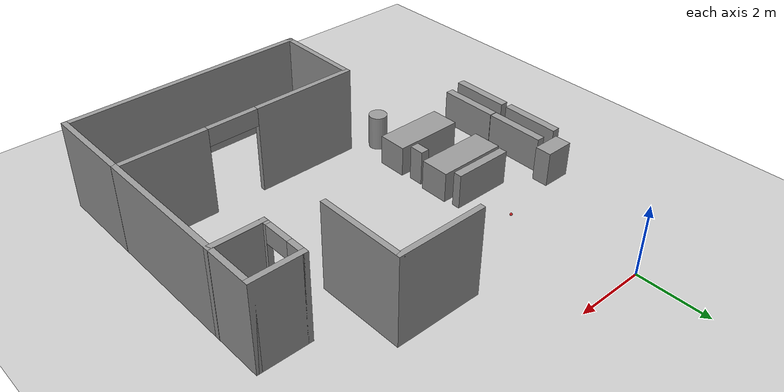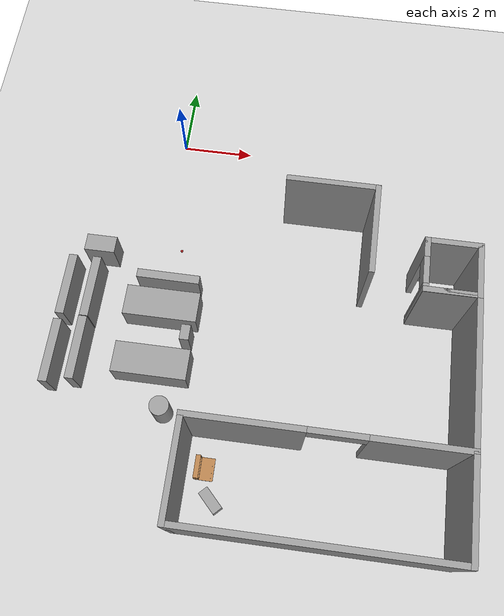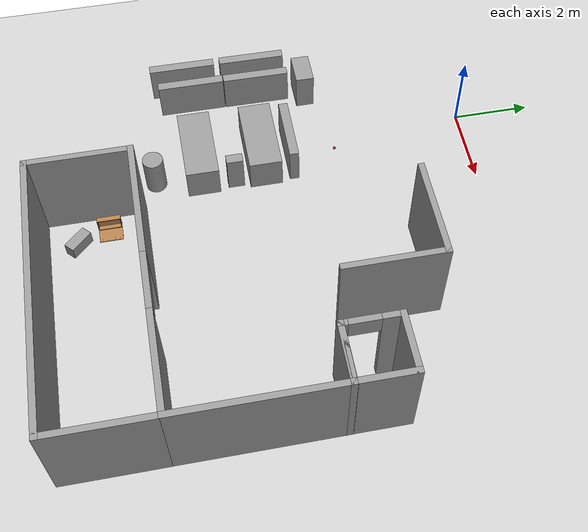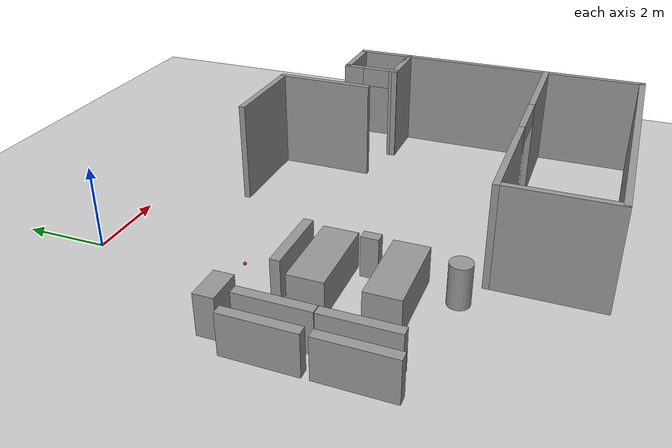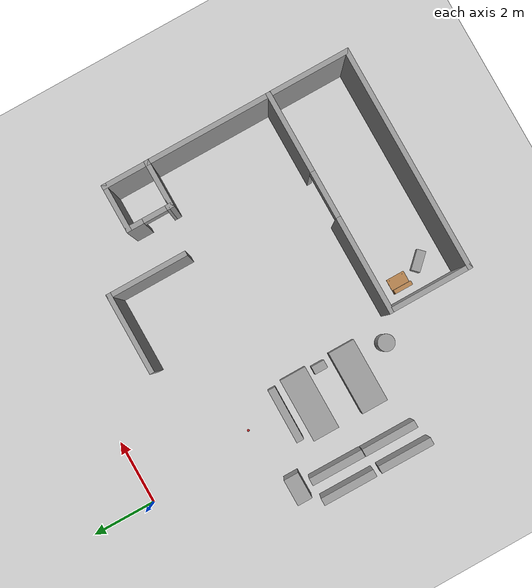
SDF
<sdf version="1.6">
 <world name="default">
  <model name="ground_plane">
   <static>1</static>
   <link name="link">
    <collision name="collision">
     <geometry><plane><normal>0 0 1</normal><size>100 100</size></plane></geometry>
     <surface><friction><ode><mu>100</mu><mu2>50</mu2></ode></friction></surface>
    </collision>
    <visual name="visual">
     <cast_shadows>0</cast_shadows>
     <geometry><plane><normal>0 0 1</normal><size>100 100</size></plane></geometry>
     <material>
      <script><uri>file://media/materials/scripts/gazebo.material</uri><name>Gazebo/Grey</name></script>
     </material>
    </visual>
   </link>
  </model>
  <model name="cma_parede_L">
   <pose>4.97628 -6.69992 0 0 -0 0</pose>
   <link name="Wall_0">
    <pose>0 -1.925 0 0 -0 0</pose>
    <visual name="Wall_0_Visual_0">
     <pose>-1.985 0 1.25 0 -0 0</pose>
     <geometry><box><size>3.03 0.15 2.5</size></box></geometry>
     <material>
      <script><uri>file://media/materials/scripts/gazebo.material</uri><name>Gazebo/Grey</name></script>
      <ambient>1 1 1 1</ambient>
     </material>
    </visual>
    <collision name="Wall_0_Collision_0">
     <geometry><box><size>3.03 0.15 2.5</size></box></geometry>
     <pose>-1.985 0 1.25 0 -0 0</pose>
    </collision>
    <visual name="Wall_0_Visual_1">
     <pose>2.24 0 1.25 0 -0 0</pose>
     <geometry><box><size>2.52 0.15 2.5</size></box></geometry>
     <material>
      <script><uri>file://media/materials/scripts/gazebo.material</uri><name>Gazebo/Grey</name></script>
      <ambient>1 1 1 1</ambient>
     </material>
    </visual>
    <collision name="Wall_0_Collision_1">
     <geometry><box><size>2.52 0.15 2.5</size></box></geometry>
     <pose>2.24 0 1.25 0 -0 0</pose>
    </collision>
    <visual name="Wall_0_Visual_2">
     <pose>0.255 0 2.25 0 -0 0</pose>
     <geometry><box><size>1.45 0.15 0.5</size></box></geometry>
     <material>
      <script><uri>file://media/materials/scripts/gazebo.material</uri><name>Gazebo/Grey</name></script>
      <ambient>1 1 1 1</ambient>
     </material>
    </visual>
    <collision name="Wall_0_Collision_2">
     <geometry><box><size>1.45 0.15 0.5</size></box></geometry>
     <pose>0.255 0 2.25 0 -0 0</pose>
    </collision>
   </link>
   <link name="Wall_1">
    <collision name="Wall_1_Collision">
     <geometry><box><size>4 0.15 2.5</size></box></geometry>
     <pose>0 0 1.25 0 -0 0</pose>
    </collision>
    <visual name="Wall_1_Visual">
     <pose>0 0 1.25 0 -0 0</pose>
     <geometry><box><size>4 0.15 2.5</size></box></geometry>
     <material>
      <script><uri>file://media/materials/scripts/gazebo.material</uri><name>Gazebo/Grey</name></script>
      <ambient>1 1 1 1</ambient>
     </material>
    </visual>
    <pose>3.425 0 0 0 -0 1.5708</pose>
   </link>
   <link name="Wall_2">
    <collision name="Wall_2_Collision">
     <geometry><box><size>1.5 0.15 2.5</size></box></geometry>
     <pose>0 0 1.25 0 -0 0</pose>
    </collision>
    <visual name="Wall_2_Visual">
     <pose>0 0 1.25 0 -0 0</pose>
     <geometry><box><size>1.5 0.15 2.5</size></box></geometry>
     <material>
      <script><uri>file://media/materials/scripts/gazebo.material</uri><name>Gazebo/Grey</name></script>
      <ambient>1 1 1 1</ambient>
     </material>
    </visual>
    <pose>2.75 1.925 0 0 -0 3.14159</pose>
   </link>
   <static>1</static>
  </model>
  <model name="cma_lavabo">
   <pose>7.72297 -4.09302 0 0 -0 0</pose>
   <link name="Wall_4">
    <pose>-0.675 0 0 0 -0 1.5708</pose>
    <visual name="Wall_4_Visual_0">
     <pose>-0.635 0 1.25 0 -0 0</pose>
     <geometry><box><size>0.23 0.15 2.5</size></box></geometry>
     <material>
      <script><uri>file://media/materials/scripts/gazebo.material</uri><name>Gazebo/Grey</name></script>
      <ambient>1 1 1 1</ambient>
     </material>
    </visual>
    <collision name="Wall_4_Collision_0">
     <geometry><box><size>0.23 0.15 2.5</size></box></geometry>
     <pose>-0.635 0 1.25 0 -0 0</pose>
    </collision>
    <visual name="Wall_4_Visual_1">
     <pose>0.48 0 1.25 0 -0 0</pose>
     <geometry><box><size>0.54 0.15 2.5</size></box></geometry>
     <material>
      <script><uri>file://media/materials/scripts/gazebo.material</uri><name>Gazebo/Grey</name></script>
      <ambient>1 1 1 1</ambient>
     </material>
    </visual>
    <collision name="Wall_4_Collision_1">
     <geometry><box><size>0.54 0.15 2.5</size></box></geometry>
     <pose>0.48 0 1.25 0 -0 0</pose>
    </collision>
    <visual name="Wall_4_Visual_2">
     <pose>-0.155 0 2.25 0 -0 0</pose>
     <geometry><box><size>0.73 0.15 0.5</size></box></geometry>
     <material>
      <script><uri>file://media/materials/scripts/gazebo.material</uri><name>Gazebo/Grey</name></script>
      <ambient>1 1 1 1</ambient>
     </material>
    </visual>
    <collision name="Wall_4_Collision_2">
     <geometry><box><size>0.73 0.15 0.5</size></box></geometry>
     <pose>-0.155 0 2.25 0 -0 0</pose>
    </collision>
   </link>
   <link name="Wall_5">
    <collision name="Wall_5_Collision">
     <geometry><box><size>1.5 0.15 2.5</size></box></geometry>
     <pose>0 0 1.25 0 -0 0</pose>
    </collision>
    <visual name="Wall_5_Visual">
     <pose>0 0 1.25 0 -0 0</pose>
     <geometry><box><size>1.5 0.15 2.5</size></box></geometry>
     <material>
      <script><uri>file://media/materials/scripts/gazebo.material</uri><name>Gazebo/Grey</name></script>
      <ambient>1 1 1 1</ambient>
     </material>
    </visual>
    <pose>0 0.675 0 0 -0 0</pose>
   </link>
   <link name="Wall_6">
    <collision name="Wall_6_Collision">
     <geometry><box><size>1.5 0.15 2.5</size></box></geometry>
     <pose>0 0 1.25 0 -0 0</pose>
    </collision>
    <visual name="Wall_6_Visual">
     <pose>0 0 1.25 0 -0 0</pose>
     <geometry><box><size>1.5 0.15 2.5</size></box></geometry>
     <material>
      <script><uri>file://media/materials/scripts/gazebo.material</uri><name>Gazebo/Grey</name></script>
      <ambient>1 1 1 1</ambient>
     </material>
    </visual>
    <pose>0.675 0 0 0 0 -1.5708</pose>
   </link>
   <link name="Wall_7">
    <collision name="Wall_7_Collision">
     <geometry><box><size>1.5 0.15 2.5</size></box></geometry>
     <pose>0 0 1.25 0 -0 0</pose>
    </collision>
    <visual name="Wall_7_Visual">
     <pose>0 0 1.25 0 -0 0</pose>
     <geometry><box><size>1.5 0.15 2.5</size></box></geometry>
     <material>
      <script><uri>file://media/materials/scripts/gazebo.material</uri><name>Gazebo/Grey</name></script>
      <ambient>1 1 1 1</ambient>
     </material>
    </visual>
    <pose>0 -0.675 0 0 -0 3.14159</pose>
   </link>
   <static>1</static>
  </model>
  <model name="cma_L2">
   <pose>4.51683 -3.24587 0 0 -0 0</pose>
   <link name="Wall_10">
    <collision name="Wall_10_Collision">
     <geometry><box><size>2.5 0.15 2.5</size></box></geometry>
     <pose>0 0 1.25 0 -0 0</pose>
    </collision>
    <visual name="Wall_10_Visual">
     <pose>0 0 1.25 0 -0 0</pose>
     <geometry><box><size>2.5 0.15 2.5</size></box></geometry>
     <material>
      <script><uri>file://media/materials/scripts/gazebo.material</uri><name>Gazebo/Grey</name></script>
      <ambient>1 1 1 1</ambient>
     </material>
    </visual>
    <pose>1.175 0 0 0 0 -1.5708</pose>
   </link>
   <link name="Wall_9">
    <collision name="Wall_9_Collision">
     <geometry><box><size>2.5 0.15 2.5</size></box></geometry>
     <pose>0 0 1.25 0 -0 0</pose>
    </collision>
    <visual name="Wall_9_Visual">
     <pose>0 0 1.25 0 -0 0</pose>
     <geometry><box><size>2.5 0.15 2.5</size></box></geometry>
     <material>
      <script><uri>file://media/materials/scripts/gazebo.material</uri><name>Gazebo/Grey</name></script>
      <ambient>1 1 1 1</ambient>
     </material>
    </visual>
    <pose>0 1.175 0 0 -0 0</pose>
   </link>
   <static>1</static>
  </model>
  <model name="cma_U">
   <pose>4.97895 -9.92408 0 0 -0 0</pose>
   <link name="Wall_16">
    <collision name="Wall_16_Collision">
     <geometry><box><size>2.5 0.15 2.5</size></box></geometry>
     <pose>0 0 1.25 0 -0 0</pose>
    </collision>
    <visual name="Wall_16_Visual">
     <pose>0 0 1.25 0 -0 0</pose>
     <geometry><box><size>2.5 0.15 2.5</size></box></geometry>
     <material>
      <script><uri>file://media/materials/scripts/gazebo.material</uri><name>Gazebo/Grey</name></script>
      <ambient>1 1 1 1</ambient>
     </material>
    </visual>
    <pose>-3.425 0 0 0 0 -1.5708</pose>
   </link>
   <link name="Wall_17">
    <collision name="Wall_17_Collision">
     <geometry><box><size>7 0.15 2.5</size></box></geometry>
     <pose>0 0 1.25 0 -0 0</pose>
    </collision>
    <visual name="Wall_17_Visual">
     <pose>0 0 1.25 0 -0 0</pose>
     <geometry><box><size>7 0.15 2.5</size></box></geometry>
     <material>
      <script><uri>file://media/materials/scripts/gazebo.material</uri><name>Gazebo/Grey</name></script>
      <ambient>1 1 1 1</ambient>
     </material>
    </visual>
    <pose>0 -1.175 0 0 -0 0</pose>
   </link>
   <link name="Wall_18">
    <collision name="Wall_18_Collision">
     <geometry><box><size>2.5 0.15 2.5</size></box></geometry>
     <pose>0 0 1.25 0 -0 0</pose>
    </collision>
    <visual name="Wall_18_Visual">
     <pose>0 0 1.25 0 -0 0</pose>
     <geometry><box><size>2.5 0.15 2.5</size></box></geometry>
     <material>
      <script><uri>file://media/materials/scripts/gazebo.material</uri><name>Gazebo/Grey</name></script>
      <ambient>1 1 1 1</ambient>
     </material>
    </visual>
    <pose>3.425 0 0 0 -0 1.5708</pose>
   </link>
   <static>1</static>
  </model>
  <model name="cma_armario_s">
   <link name="link_1">
    <pose>-2e-06 -3e-06 0 0 -0 0</pose>
    <inertial>
     <mass>0.390159</mass>
     <inertia>
      <ixx>0.039647</ixx>
      <ixy>0</ixy>
      <ixz>0</ixz>
      <iyy>0.0550708</iyy>
      <iyz>0</iyz>
      <izz>0.0296912</izz>
     </inertia>
    </inertial>
    <visual name="visual">
     <geometry><box><size>0.832942 0.468397 1</size></box></geometry>
     <material>
      <lighting>1</lighting>
      <script><uri>file://media/materials/scripts/gazebo.material</uri><name>Gazebo/Grey</name></script>
      <ambient>0.3 0.3 0.3 1</ambient>
      <diffuse>0.7 0.7 0.7 1</diffuse>
      <specular>0.01 0.01 0.01 1</specular>
      <emissive>0 0 0 1</emissive>
     </material>
    </visual>
    <collision name="collision">
     <geometry><box><size>0.832942 0.468397 1</size></box></geometry>
     <surface>
      <friction>
       <ode><mu>1</mu><mu2>1</mu2><fdir1>0 0 0</fdir1><slip1>0</slip1><slip2>0</slip2></ode>
       <torsional>
        <coefficient>1</coefficient>
        <patch_radius>0</patch_radius>
        <surface_radius>0</surface_radius>
        <use_patch_radius>1</use_patch_radius>
        <ode><slip>0</slip></ode>
       </torsional>
      </friction>
      <bounce><restitution_coefficient>0</restitution_coefficient><threshold>1e+06</threshold></bounce>
      <contact>
       <collide_without_contact>0</collide_without_contact>
       <collide_without_contact_bitmask>1</collide_without_contact_bitmask>
       <collide_bitmask>1</collide_bitmask>
       <ode>
        <soft_cfm>0</soft_cfm>
        <soft_erp>0.2</soft_erp>
        <kp>1e+13</kp>
        <kd>1</kd>
        <max_vel>0.01</max_vel>
        <min_depth>0</min_depth>
       </ode>
       <bullet>
        <split_impulse>1</split_impulse>
        <split_impulse_penetration_threshold>-0.01</split_impulse_penetration_threshold>
        <soft_cfm>0</soft_cfm>
        <soft_erp>0.2</soft_erp>
        <kp>1e+13</kp>
        <kd>1</kd>
       </bullet>
      </contact>
     </surface>
    </collision>
   </link>
   <static>0</static>
   <pose>-1.63844 -3.93796 0.500001 6e-06 -0 0.001709</pose>
  </model>
  <model name="cma_armario_2">
   <link name="link_0">
    <pose>1.32157 0.885178 0.5 0 -0 0</pose>
    <inertial>
     <mass>0.402376</mass>
     <inertia>
      <ixx>0.0353686</ixx>
      <ixy>0</ixy>
      <ixz>0</ixz>
      <iyy>0.132616</iyy>
      <iyz>0</iyz>
      <izz>0.100922</izz>
     </inertia>
    </inertial>
    <visual name="visual">
     <geometry><box><size>1.71877 0.234069 1</size></box></geometry>
     <material>
      <lighting>1</lighting>
      <script><uri>file://media/materials/scripts/gazebo.material</uri><name>Gazebo/Grey</name></script>
      <ambient>0.3 0.3 0.3 1</ambient>
      <diffuse>0.7 0.7 0.7 1</diffuse>
      <specular>0.01 0.01 0.01 1</specular>
      <emissive>0 0 0 1</emissive>
     </material>
    </visual>
    <collision name="collision">
     <geometry><box><size>1.71877 0.234069 1</size></box></geometry>
     <surface>
      <friction>
       <ode><mu>1</mu><mu2>1</mu2><fdir1>0 0 0</fdir1><slip1>0</slip1><slip2>0</slip2></ode>
       <torsional>
        <coefficient>1</coefficient>
        <patch_radius>0</patch_radius>
        <surface_radius>0</surface_radius>
        <use_patch_radius>1</use_patch_radius>
        <ode><slip>0</slip></ode>
       </torsional>
      </friction>
      <bounce><restitution_coefficient>0</restitution_coefficient><threshold>1e+06</threshold></bounce>
      <contact>
       <collide_without_contact>0</collide_without_contact>
       <collide_without_contact_bitmask>1</collide_without_contact_bitmask>
       <collide_bitmask>1</collide_bitmask>
       <ode>
        <soft_cfm>0</soft_cfm>
        <soft_erp>0.2</soft_erp>
        <kp>1e+13</kp>
        <kd>1</kd>
        <max_vel>0.01</max_vel>
        <min_depth>0</min_depth>
       </ode>
       <bullet>
        <split_impulse>1</split_impulse>
        <split_impulse_penetration_threshold>-0.01</split_impulse_penetration_threshold>
        <soft_cfm>0</soft_cfm>
        <soft_erp>0.2</soft_erp>
        <kp>1e+13</kp>
        <kd>1</kd>
       </bullet>
      </contact>
     </surface>
    </collision>
   </link>
   <static>0</static>
   <pose>-1.43697 -6.56213 1e-06 -2e-06 -0 1.56474</pose>
  </model>
  <model name="cma_armario_2_clone">
   <link name="link_0">
    <pose>1.32157 0.885178 0.5 0 -0 0</pose>
    <inertial>
     <mass>0.402376</mass>
     <inertia>
      <ixx>0.0353686</ixx>
      <ixy>0</ixy>
      <ixz>0</ixz>
      <iyy>0.132616</iyy>
      <iyz>0</iyz>
      <izz>0.100922</izz>
     </inertia>
    </inertial>
    <visual name="visual">
     <geometry><box><size>1.71877 0.234069 1</size></box></geometry>
     <material>
      <lighting>1</lighting>
      <script><uri>file://media/materials/scripts/gazebo.material</uri><name>Gazebo/Grey</name></script>
      <ambient>0.3 0.3 0.3 1</ambient>
      <diffuse>0.7 0.7 0.7 1</diffuse>
      <specular>0.01 0.01 0.01 1</specular>
      <emissive>0 0 0 1</emissive>
     </material>
    </visual>
    <collision name="collision">
     <geometry><box><size>1.71877 0.234069 1</size></box></geometry>
     <surface>
      <friction>
       <ode><mu>1</mu><mu2>1</mu2><fdir1>0 0 0</fdir1><slip1>0</slip1><slip2>0</slip2></ode>
       <torsional>
        <coefficient>1</coefficient>
        <patch_radius>0</patch_radius>
        <surface_radius>0</surface_radius>
        <use_patch_radius>1</use_patch_radius>
        <ode><slip>0</slip></ode>
       </torsional>
      </friction>
      <bounce><restitution_coefficient>0</restitution_coefficient><threshold>1e+06</threshold></bounce>
      <contact>
       <collide_without_contact>0</collide_without_contact>
       <collide_without_contact_bitmask>1</collide_without_contact_bitmask>
       <collide_bitmask>1</collide_bitmask>
       <ode>
        <soft_cfm>0</soft_cfm>
        <soft_erp>0.2</soft_erp>
        <kp>1e+13</kp>
        <kd>1</kd>
        <max_vel>0.01</max_vel>
        <min_depth>0</min_depth>
       </ode>
       <bullet>
        <split_impulse>1</split_impulse>
        <split_impulse_penetration_threshold>-0.01</split_impulse_penetration_threshold>
        <soft_cfm>0</soft_cfm>
        <soft_erp>0.2</soft_erp>
        <kp>1e+13</kp>
        <kd>1</kd>
       </bullet>
      </contact>
     </surface>
    </collision>
   </link>
   <static>0</static>
   <pose>-1.44352 -8.44504 1e-06 -2e-06 -0 1.56474</pose>
  </model>
  <model name="cma_cama_s">
   <link name="link_0">
    <pose>-0 2e-06 0 0 -0 0</pose>
    <inertial>
     <mass>1.44546</mass>
     <inertia>
      <ixx>0.173816</ixx>
      <ixy>0</ixy>
      <ixz>0</ixz>
      <iyy>0.575223</iyy>
      <iyz>0</iyz>
      <izz>0.56746</izz>
     </inertia>
    </inertial>
    <visual name="visual">
     <geometry><box><size>2.0054 0.830227 0.868163</size></box></geometry>
     <material>
      <lighting>1</lighting>
      <script><uri>file://media/materials/scripts/gazebo.material</uri><name>Gazebo/Grey</name></script>
      <ambient>0.3 0.3 0.3 1</ambient>
      <diffuse>0.7 0.7 0.7 1</diffuse>
      <specular>0.01 0.01 0.01 1</specular>
      <emissive>0 0 0 1</emissive>
     </material>
    </visual>
    <collision name="collision">
     <geometry><box><size>2.0054 0.830227 0.868163</size></box></geometry>
     <surface>
      <friction>
       <ode><mu>1</mu><mu2>1</mu2><fdir1>0 0 0</fdir1><slip1>0</slip1><slip2>0</slip2></ode>
       <torsional>
        <coefficient>1</coefficient>
        <patch_radius>0</patch_radius>
        <surface_radius>0</surface_radius>
        <use_patch_radius>1</use_patch_radius>
        <ode><slip>0</slip></ode>
       </torsional>
      </friction>
      <bounce><restitution_coefficient>0</restitution_coefficient><threshold>1e+06</threshold></bounce>
      <contact>
       <collide_without_contact>0</collide_without_contact>
       <collide_without_contact_bitmask>1</collide_without_contact_bitmask>
       <collide_bitmask>1</collide_bitmask>
       <ode>
        <soft_cfm>0</soft_cfm>
        <soft_erp>0.2</soft_erp>
        <kp>1e+13</kp>
        <kd>1</kd>
        <max_vel>0.01</max_vel>
        <min_depth>0</min_depth>
       </ode>
       <bullet>
        <split_impulse>1</split_impulse>
        <split_impulse_penetration_threshold>-0.01</split_impulse_penetration_threshold>
        <soft_cfm>0</soft_cfm>
        <soft_erp>0.2</soft_erp>
        <kp>1e+13</kp>
        <kd>1</kd>
       </bullet>
      </contact>
     </surface>
    </collision>
   </link>
   <static>0</static>
   <pose>0.315394 -5.42014 0.43408 5e-06 -0 -4e-06</pose>
  </model>
  <model name="cma_cama_s_0">
   <link name="link_0">
    <pose>-0 2e-06 0 0 -0 0</pose>
    <inertial>
     <mass>1.44546</mass>
     <inertia>
      <ixx>0.173816</ixx>
      <ixy>0</ixy>
      <ixz>0</ixz>
      <iyy>0.575223</iyy>
      <iyz>0</iyz>
      <izz>0.56746</izz>
     </inertia>
    </inertial>
    <visual name="visual">
     <geometry><box><size>2.0054 0.830227 0.868163</size></box></geometry>
     <material>
      <lighting>1</lighting>
      <script><uri>file://media/materials/scripts/gazebo.material</uri><name>Gazebo/Grey</name></script>
      <ambient>0.3 0.3 0.3 1</ambient>
      <diffuse>0.7 0.7 0.7 1</diffuse>
      <specular>0.01 0.01 0.01 1</specular>
      <emissive>0 0 0 1</emissive>
     </material>
    </visual>
    <collision name="collision">
     <geometry><box><size>2.0054 0.830227 0.868163</size></box></geometry>
     <surface>
      <friction>
       <ode><mu>1</mu><mu2>1</mu2><fdir1>0 0 0</fdir1><slip1>0</slip1><slip2>0</slip2></ode>
       <torsional>
        <coefficient>1</coefficient>
        <patch_radius>0</patch_radius>
        <surface_radius>0</surface_radius>
        <use_patch_radius>1</use_patch_radius>
        <ode><slip>0</slip></ode>
       </torsional>
      </friction>
      <bounce><restitution_coefficient>0</restitution_coefficient><threshold>1e+06</threshold></bounce>
      <contact>
       <collide_without_contact>0</collide_without_contact>
       <collide_without_contact_bitmask>1</collide_without_contact_bitmask>
       <collide_bitmask>1</collide_bitmask>
       <ode>
        <soft_cfm>0</soft_cfm>
        <soft_erp>0.2</soft_erp>
        <kp>1e+13</kp>
        <kd>1</kd>
        <max_vel>0.01</max_vel>
        <min_depth>0</min_depth>
       </ode>
       <bullet>
        <split_impulse>1</split_impulse>
        <split_impulse_penetration_threshold>-0.01</split_impulse_penetration_threshold>
        <soft_cfm>0</soft_cfm>
        <soft_erp>0.2</soft_erp>
        <kp>1e+13</kp>
        <kd>1</kd>
       </bullet>
      </contact>
     </surface>
    </collision>
   </link>
   <static>0</static>
   <pose>0.314116 -7.03078 0.43408 -5e-06 -0 -2e-06</pose>
  </model>
  <model name="cma_picador">
   <link name="link_2">
    <pose>-0.7258 -1.69104 0 0 -0 0</pose>
    <inertial>
     <mass>0.104732</mass>
     <inertia>
      <ixx>0.00927906</ixx>
      <ixy>0</ixy>
      <ixz>0</ixz>
      <iyy>0.010243</iyy>
      <iyz>0</iyz>
      <izz>0.00206672</izz>
     </inertia>
    </inertial>
    <visual name="visual">
     <geometry><box><size>0.416688 0.25134 1</size></box></geometry>
     <material>
      <lighting>1</lighting>
      <script><uri>file://media/materials/scripts/gazebo.material</uri><name>Gazebo/Grey</name></script>
      <ambient>0.3 0.3 0.3 1</ambient>
      <diffuse>0.7 0.7 0.7 1</diffuse>
      <specular>0.01 0.01 0.01 1</specular>
      <emissive>0 0 0 1</emissive>
     </material>
    </visual>
    <collision name="collision">
     <geometry><box><size>0.416688 0.25134 1</size></box></geometry>
     <surface>
      <friction>
       <ode><mu>1</mu><mu2>1</mu2><fdir1>0 0 0</fdir1><slip1>0</slip1><slip2>0</slip2></ode>
       <torsional>
        <coefficient>1</coefficient>
        <patch_radius>0</patch_radius>
        <surface_radius>0</surface_radius>
        <use_patch_radius>1</use_patch_radius>
        <ode><slip>0</slip></ode>
       </torsional>
      </friction>
      <bounce><restitution_coefficient>0</restitution_coefficient><threshold>1e+06</threshold></bounce>
      <contact>
       <collide_without_contact>0</collide_without_contact>
       <collide_without_contact_bitmask>1</collide_without_contact_bitmask>
       <collide_bitmask>1</collide_bitmask>
       <ode>
        <soft_cfm>0</soft_cfm>
        <soft_erp>0.2</soft_erp>
        <kp>1e+13</kp>
        <kd>1</kd>
        <max_vel>0.01</max_vel>
        <min_depth>0</min_depth>
       </ode>
       <bullet>
        <split_impulse>1</split_impulse>
        <split_impulse_penetration_threshold>-0.01</split_impulse_penetration_threshold>
        <soft_cfm>0</soft_cfm>
        <soft_erp>0.2</soft_erp>
        <kp>1e+13</kp>
        <kd>1</kd>
       </bullet>
      </contact>
     </surface>
    </collision>
   </link>
   <static>0</static>
   <pose>-0.585834 -5.45588 0.499992 -3e-06 4e-06 1.56627</pose>
  </model>
  <model name="cma_armario_3">
   <link name="link_0">
    <pose>1.32157 0.885178 0.5 0 -0 0</pose>
    <inertial>
     <mass>0.402376</mass>
     <inertia>
      <ixx>0.0353686</ixx>
      <ixy>0</ixy>
      <ixz>0</ixz>
      <iyy>0.132616</iyy>
      <iyz>0</iyz>
      <izz>0.100922</izz>
     </inertia>
    </inertial>
    <visual name="visual">
     <geometry><box><size>1.71877 0.234069 1</size></box></geometry>
     <material>
      <lighting>1</lighting>
      <script><uri>file://media/materials/scripts/gazebo.material</uri><name>Gazebo/Grey</name></script>
      <ambient>0.3 0.3 0.3 1</ambient>
      <diffuse>0.7 0.7 0.7 1</diffuse>
      <specular>0.01 0.01 0.01 1</specular>
      <emissive>0 0 0 1</emissive>
     </material>
    </visual>
    <collision name="collision">
     <geometry><box><size>1.71877 0.234069 1</size></box></geometry>
     <surface>
      <friction>
       <ode><mu>1</mu><mu2>1</mu2><fdir1>0 0 0</fdir1><slip1>0</slip1><slip2>0</slip2></ode>
       <torsional>
        <coefficient>1</coefficient>
        <patch_radius>0</patch_radius>
        <surface_radius>0</surface_radius>
        <use_patch_radius>1</use_patch_radius>
        <ode><slip>0</slip></ode>
       </torsional>
      </friction>
      <bounce><restitution_coefficient>0</restitution_coefficient><threshold>1e+06</threshold></bounce>
      <contact>
       <collide_without_contact>0</collide_without_contact>
       <collide_without_contact_bitmask>1</collide_without_contact_bitmask>
       <collide_bitmask>1</collide_bitmask>
       <ode>
        <soft_cfm>0</soft_cfm>
        <soft_erp>0.2</soft_erp>
        <kp>1e+13</kp>
        <kd>1</kd>
        <max_vel>0.01</max_vel>
        <min_depth>0</min_depth>
       </ode>
       <bullet>
        <split_impulse>1</split_impulse>
        <split_impulse_penetration_threshold>-0.01</split_impulse_penetration_threshold>
        <soft_cfm>0</soft_cfm>
        <soft_erp>0.2</soft_erp>
        <kp>1e+13</kp>
        <kd>1</kd>
       </bullet>
      </contact>
     </surface>
    </collision>
   </link>
   <static>0</static>
   <pose>-0.943313 -5.55375 -1.4e-05 -0 -6e-06 -0.004586</pose>
  </model>
  <model name="cma_armario_4">
   <link name="link_0">
    <pose>1.32157 0.885178 0.5 0 -0 0</pose>
    <inertial>
     <mass>0.402376</mass>
     <inertia>
      <ixx>0.0353686</ixx>
      <ixy>0</ixy>
      <ixz>0</ixz>
      <iyy>0.132616</iyy>
      <iyz>0</iyz>
      <izz>0.100922</izz>
     </inertia>
    </inertial>
    <visual name="visual">
     <geometry><box><size>1.71877 0.234069 1</size></box></geometry>
     <material>
      <lighting>1</lighting>
      <script><uri>file://media/materials/scripts/gazebo.material</uri><name>Gazebo/Grey</name></script>
      <ambient>0.3 0.3 0.3 1</ambient>
      <diffuse>0.7 0.7 0.7 1</diffuse>
      <specular>0.01 0.01 0.01 1</specular>
      <emissive>0 0 0 1</emissive>
     </material>
    </visual>
    <collision name="collision">
     <geometry><box><size>1.71877 0.234069 1</size></box></geometry>
     <surface>
      <friction>
       <ode><mu>1</mu><mu2>1</mu2><fdir1>0 0 0</fdir1><slip1>0</slip1><slip2>0</slip2></ode>
       <torsional>
        <coefficient>1</coefficient>
        <patch_radius>0</patch_radius>
        <surface_radius>0</surface_radius>
        <use_patch_radius>1</use_patch_radius>
        <ode><slip>0</slip></ode>
       </torsional>
      </friction>
      <bounce><restitution_coefficient>0</restitution_coefficient><threshold>1e+06</threshold></bounce>
      <contact>
       <collide_without_contact>0</collide_without_contact>
       <collide_without_contact_bitmask>1</collide_without_contact_bitmask>
       <collide_bitmask>1</collide_bitmask>
       <ode>
        <soft_cfm>0</soft_cfm>
        <soft_erp>0.2</soft_erp>
        <kp>1e+13</kp>
        <kd>1</kd>
        <max_vel>0.01</max_vel>
        <min_depth>0</min_depth>
       </ode>
       <bullet>
        <split_impulse>1</split_impulse>
        <split_impulse_penetration_threshold>-0.01</split_impulse_penetration_threshold>
        <soft_cfm>0</soft_cfm>
        <soft_erp>0.2</soft_erp>
        <kp>1e+13</kp>
        <kd>1</kd>
       </bullet>
      </contact>
     </surface>
    </collision>
   </link>
   <static>0</static>
   <pose>-0.779586 -6.54594 1e-06 -2e-06 -0 1.56412</pose>
  </model>
  <model name="cma_armario_5">
   <link name="link_0">
    <pose>1.32157 0.885178 0.5 0 -0 0</pose>
    <inertial>
     <mass>0.402376</mass>
     <inertia>
      <ixx>0.0353686</ixx>
      <ixy>0</ixy>
      <ixz>0</ixz>
      <iyy>0.132616</iyy>
      <iyz>0</iyz>
      <izz>0.100922</izz>
     </inertia>
    </inertial>
    <visual name="visual">
     <geometry><box><size>1.71877 0.234069 1</size></box></geometry>
     <material>
      <lighting>1</lighting>
      <script><uri>file://media/materials/scripts/gazebo.material</uri><name>Gazebo/Grey</name></script>
      <ambient>0.3 0.3 0.3 1</ambient>
      <diffuse>0.7 0.7 0.7 1</diffuse>
      <specular>0.01 0.01 0.01 1</specular>
      <emissive>0 0 0 1</emissive>
     </material>
    </visual>
    <collision name="collision">
     <geometry><box><size>1.71877 0.234069 1</size></box></geometry>
     <surface>
      <friction>
       <ode><mu>1</mu><mu2>1</mu2><fdir1>0 0 0</fdir1><slip1>0</slip1><slip2>0</slip2></ode>
       <torsional>
        <coefficient>1</coefficient>
        <patch_radius>0</patch_radius>
        <surface_radius>0</surface_radius>
        <use_patch_radius>1</use_patch_radius>
        <ode><slip>0</slip></ode>
       </torsional>
      </friction>
      <bounce><restitution_coefficient>0</restitution_coefficient><threshold>1e+06</threshold></bounce>
      <contact>
       <collide_without_contact>0</collide_without_contact>
       <collide_without_contact_bitmask>1</collide_without_contact_bitmask>
       <collide_bitmask>1</collide_bitmask>
       <ode>
        <soft_cfm>0</soft_cfm>
        <soft_erp>0.2</soft_erp>
        <kp>1e+13</kp>
        <kd>1</kd>
        <max_vel>0.01</max_vel>
        <min_depth>0</min_depth>
       </ode>
       <bullet>
        <split_impulse>1</split_impulse>
        <split_impulse_penetration_threshold>-0.01</split_impulse_penetration_threshold>
        <soft_cfm>0</soft_cfm>
        <soft_erp>0.2</soft_erp>
        <kp>1e+13</kp>
        <kd>1</kd>
       </bullet>
      </contact>
     </surface>
    </collision>
   </link>
   <static>0</static>
   <pose>-0.788103 -8.27707 1e-06 -2e-06 -0 1.56877</pose>
  </model>
  <model name="cma_cesto_0">
   <link name="link_1">
    <pose>-0.329659 -1.55494 0 0 -0 0</pose>
    <inertial>
     <mass>0.267897</mass>
     <inertia>
      <ixx>0.0268102</ixx>
      <ixy>0</ixy>
      <ixz>0</ixz>
      <iyy>0.0268102</iyy>
      <iyz>0</iyz>
      <izz>0.00897111</izz>
     </inertia>
    </inertial>
    <visual name="visual">
     <geometry><cylinder><radius>0.258792</radius><length>1</length></cylinder></geometry>
     <material>
      <lighting>1</lighting>
      <script><uri>file://media/materials/scripts/gazebo.material</uri><name>Gazebo/Grey</name></script>
      <ambient>0.3 0.3 0.3 1</ambient>
      <diffuse>0.7 0.7 0.7 1</diffuse>
      <specular>0.01 0.01 0.01 1</specular>
      <emissive>0 0 0 1</emissive>
     </material>
    </visual>
    <collision name="collision">
     <geometry><cylinder><radius>0.258792</radius><length>1</length></cylinder></geometry>
     <surface>
      <friction>
       <ode><mu>1</mu><mu2>1</mu2><fdir1>0 0 0</fdir1><slip1>0</slip1><slip2>0</slip2></ode>
       <torsional>
        <coefficient>1</coefficient>
        <patch_radius>0</patch_radius>
        <surface_radius>0</surface_radius>
        <use_patch_radius>1</use_patch_radius>
        <ode><slip>0</slip></ode>
       </torsional>
      </friction>
      <bounce><restitution_coefficient>0</restitution_coefficient><threshold>1e+06</threshold></bounce>
      <contact>
       <collide_without_contact>0</collide_without_contact>
       <collide_without_contact_bitmask>1</collide_without_contact_bitmask>
       <collide_bitmask>1</collide_bitmask>
       <ode>
        <soft_cfm>0</soft_cfm>
        <soft_erp>0.2</soft_erp>
        <kp>1e+13</kp>
        <kd>1</kd>
        <max_vel>0.01</max_vel>
        <min_depth>0</min_depth>
       </ode>
       <bullet>
        <split_impulse>1</split_impulse>
        <split_impulse_penetration_threshold>-0.01</split_impulse_penetration_threshold>
        <soft_cfm>0</soft_cfm>
        <soft_erp>0.2</soft_erp>
        <kp>1e+13</kp>
        <kd>1</kd>
       </bullet>
      </contact>
     </surface>
    </collision>
   </link>
   <static>0</static>
   <pose>1.10203 -6.65937 0.499991 0 -0 0</pose>
  </model>
  <model name="cma_barra_70cmD">
   <link name="link_2">
    <pose>3.79375 1.34046 0.5 0 0 -0.803534</pose>
    <inertial>
     <mass>0.0631368</mass>
     <inertia>
      <ixx>0.00106542</ixx>
      <ixy>0</ixy>
      <ixz>0</ixz>
      <iyy>0.00284727</iyy>
      <iyz>0</iyz>
      <izz>0.0025815</izz>
     </inertia>
    </inertial>
    <visual name="visual">
     <geometry><box><size>0.643938 0.275728 0.355737</size></box></geometry>
     <material>
      <lighting>1</lighting>
      <script><uri>file://media/materials/scripts/gazebo.material</uri><name>Gazebo/Grey</name></script>
      <ambient>0.3 0.3 0.3 1</ambient>
      <diffuse>0.7 0.7 0.7 1</diffuse>
      <specular>0.01 0.01 0.01 1</specular>
      <emissive>0 0 0 1</emissive>
     </material>
    </visual>
    <collision name="collision">
     <geometry><box><size>0.643938 0.275728 0.355737</size></box></geometry>
     <surface>
      <friction>
       <ode><mu>1</mu><mu2>1</mu2><fdir1>0 0 0</fdir1><slip1>0</slip1><slip2>0</slip2></ode>
       <torsional>
        <coefficient>1</coefficient>
        <patch_radius>0</patch_radius>
        <surface_radius>0</surface_radius>
        <use_patch_radius>1</use_patch_radius>
        <ode><slip>0</slip></ode>
       </torsional>
      </friction>
      <bounce><restitution_coefficient>0</restitution_coefficient><threshold>1e+06</threshold></bounce>
      <contact>
       <collide_without_contact>0</collide_without_contact>
       <collide_without_contact_bitmask>1</collide_without_contact_bitmask>
       <collide_bitmask>1</collide_bitmask>
       <ode>
        <soft_cfm>0</soft_cfm>
        <soft_erp>0.2</soft_erp>
        <kp>1e+13</kp>
        <kd>1</kd>
        <max_vel>0.01</max_vel>
        <min_depth>0</min_depth>
       </ode>
       <bullet>
        <split_impulse>1</split_impulse>
        <split_impulse_penetration_threshold>-0.01</split_impulse_penetration_threshold>
        <soft_cfm>0</soft_cfm>
        <soft_erp>0.2</soft_erp>
        <kp>1e+13</kp>
        <kd>1</kd>
       </bullet>
      </contact>
     </surface>
    </collision>
   </link>
   <static>0</static>
   <pose>-1.41056 -11.6533 -0.32217 3e-06 -7e-06 0.005529</pose>
  </model>
  <model name="cricket_ball">
   <link name="link">
    <pose>0 0 0.0375 0 -0 0</pose>
    <inertial>
     <mass>0.1467</mass>
     <inertia>
      <ixx>8.25187e-05</ixx>
      <ixy>0</ixy>
      <ixz>0</ixz>
      <iyy>8.25187e-05</iyy>
      <iyz>0</iyz>
      <izz>8.25187e-05</izz>
     </inertia>
    </inertial>
    <collision name="collision">
     <geometry><sphere><radius>0.0375</radius></sphere></geometry>
     <surface>
      <contact>
       <poissons_ratio>0.347</poissons_ratio>
       <elastic_modulus>8.8e+09</elastic_modulus>
       <ode><kp>100000</kp><kd>100</kd><max_vel>100</max_vel><min_depth>0.001</min_depth></ode>
      </contact>
      <friction>
       <torsional>
        <coefficient>1</coefficient>
        <use_patch_radius>0</use_patch_radius>
        <surface_radius>0.01</surface_radius>
       </torsional>
      </friction>
     </surface>
    </collision>
    <visual name="visual">
     <geometry><sphere><radius>0.0375</radius></sphere></geometry>
     <material>
      <script><uri>file://media/materials/scripts/gazebo.material</uri><name>Gazebo/Red</name></script>
     </material>
    </visual>
    <velocity_decay><linear>0</linear><angular>0.005</angular></velocity_decay>
   </link>
   <pose>0.462312 -3.46046 -0.001014 0 -0 0</pose>
  </model>
  <model name="wooden_case">
   <link name="base">
    <pose>0 0 0.024 0 -0 0</pose>
    <inertial>
     <pose>-0.022184 0 0.171592 0 -0 0</pose>
     <mass>3.96264</mass>
     <inertia>
      <ixx>0.213536</ixx>
      <ixy>0</ixy>
      <ixz>0.000779377</ixz>
      <iyy>0.0708943</iyy>
      <iyz>0</iyz>
      <izz>0.154604</izz>
     </inertia>
    </inertial>
    <collision name="collision_back">
     <pose>-0.053975 0 0.1778 0 -0 0</pose>
     <geometry><box><size>0.01905 0.5461 0.3175</size></box></geometry>
     <surface>
      <contact>
       <poissons_ratio>0.347</poissons_ratio>
       <elastic_modulus>8.8e+09</elastic_modulus>
       <ode><kp>100000</kp><kd>100</kd><max_vel>100</max_vel><min_depth>0.001</min_depth></ode>
      </contact>
      <friction>
       <torsional>
        <coefficient>1</coefficient>
        <use_patch_radius>0</use_patch_radius>
        <surface_radius>0.01</surface_radius>
       </torsional>
      </friction>
     </surface>
    </collision>
    <visual name="visual_back">
     <pose>-0.053975 0 0.1778 0 -0 0</pose>
     <geometry><box><size>0.01905 0.5461 0.3175</size></box></geometry>
     <material>
      <script><uri>file://media/materials/scripts/gazebo.material</uri><name>Gazebo/Wood</name></script>
     </material>
    </visual>
    <collision name="collision_bottom">
     <pose>0 0 0.009525 0 -0 0</pose>
     <geometry><box><size>0.127 0.5842 0.01905</size></box></geometry>
     <surface>
      <contact>
       <poissons_ratio>0.347</poissons_ratio>
       <elastic_modulus>8.8e+09</elastic_modulus>
       <ode><kp>100000</kp><kd>100</kd><max_vel>100</max_vel><min_depth>0.001</min_depth></ode>
      </contact>
      <friction>
       <torsional>
        <coefficient>1</coefficient>
        <use_patch_radius>0</use_patch_radius>
        <surface_radius>0.01</surface_radius>
       </torsional>
      </friction>
     </surface>
    </collision>
    <visual name="visual_bottom">
     <pose>0 0 0.009525 0 -0 0</pose>
     <geometry><box><size>0.127 0.5842 0.01905</size></box></geometry>
     <material>
      <script><uri>file://media/materials/scripts/gazebo.material</uri><name>Gazebo/Wood</name></script>
     </material>
    </visual>
    <collision name="collision_top">
     <pose>0 0 0.346075 0 -0 0</pose>
     <geometry><box><size>0.127 0.5842 0.01905</size></box></geometry>
     <surface>
      <contact>
       <poissons_ratio>0.347</poissons_ratio>
       <elastic_modulus>8.8e+09</elastic_modulus>
       <ode><kp>100000</kp><kd>100</kd><max_vel>100</max_vel><min_depth>0.001</min_depth></ode>
      </contact>
      <friction>
       <torsional>
        <coefficient>1</coefficient>
        <use_patch_radius>0</use_patch_radius>
        <surface_radius>0.01</surface_radius>
       </torsional>
      </friction>
     </surface>
    </collision>
    <visual name="visual_top">
     <pose>0 0 0.346075 0 -0 0</pose>
     <geometry><box><size>0.127 0.5842 0.01905</size></box></geometry>
     <material>
      <script><uri>file://media/materials/scripts/gazebo.material</uri><name>Gazebo/Wood</name></script>
     </material>
    </visual>
    <collision name="collision_left">
     <pose>0 -0.282575 0.1778 0 -0 0</pose>
     <geometry><box><size>0.127 0.01905 0.3175</size></box></geometry>
     <surface>
      <contact>
       <poissons_ratio>0.347</poissons_ratio>
       <elastic_modulus>8.8e+09</elastic_modulus>
       <ode><kp>100000</kp><kd>100</kd><max_vel>100</max_vel><min_depth>0.001</min_depth></ode>
      </contact>
      <friction>
       <torsional>
        <coefficient>1</coefficient>
        <use_patch_radius>0</use_patch_radius>
        <surface_radius>0.01</surface_radius>
       </torsional>
      </friction>
     </surface>
    </collision>
    <visual name="visual_left">
     <pose>0 -0.282575 0.1778 0 -0 0</pose>
     <geometry><box><size>0.127 0.01905 0.3175</size></box></geometry>
     <material>
      <script><uri>file://media/materials/scripts/gazebo.material</uri><name>Gazebo/Wood</name></script>
     </material>
    </visual>
    <collision name="collision_right">
     <pose>0 0.282575 0.1778 0 -0 0</pose>
     <geometry><box><size>0.127 0.01905 0.3175</size></box></geometry>
     <surface>
      <contact>
       <poissons_ratio>0.347</poissons_ratio>
       <elastic_modulus>8.8e+09</elastic_modulus>
       <ode><kp>100000</kp><kd>100</kd><max_vel>100</max_vel><min_depth>0.001</min_depth></ode>
      </contact>
      <friction>
       <torsional>
        <coefficient>1</coefficient>
        <use_patch_radius>0</use_patch_radius>
        <surface_radius>0.01</surface_radius>
       </torsional>
      </friction>
     </surface>
    </collision>
    <visual name="visual_right">
     <pose>0 0.282575 0.1778 0 -0 0</pose>
     <geometry><box><size>0.127 0.01905 0.3175</size></box></geometry>
     <material>
      <script><uri>file://media/materials/scripts/gazebo.material</uri><name>Gazebo/Wood</name></script>
     </material>
    </visual>
    <collision name="collision_block_left">
     <pose>0.0095 -0.2151 -0.012 0 -0 0</pose>
     <geometry><box><size>0.108 0.05 0.024</size></box></geometry>
     <surface>
      <contact>
       <poissons_ratio>0.347</poissons_ratio>
       <elastic_modulus>8.8e+09</elastic_modulus>
       <ode><kp>100000</kp><kd>100</kd><max_vel>100</max_vel><min_depth>0.001</min_depth></ode>
      </contact>
      <friction>
       <torsional>
        <coefficient>1</coefficient>
        <use_patch_radius>0</use_patch_radius>
        <surface_radius>0.01</surface_radius>
       </torsional>
      </friction>
     </surface>
    </collision>
    <visual name="visual_block_left">
     <pose>0.0095 -0.2151 -0.012 0 -0 0</pose>
     <geometry><box><size>0.108 0.05 0.024</size></box></geometry>
     <material>
      <script><uri>file://media/materials/scripts/gazebo.material</uri><name>Gazebo/Wood</name></script>
     </material>
    </visual>
    <collision name="collision_block_right">
     <pose>0.0095 0.2151 -0.012 0 -0 0</pose>
     <geometry><box><size>0.108 0.05 0.024</size></box></geometry>
     <surface>
      <contact>
       <poissons_ratio>0.347</poissons_ratio>
       <elastic_modulus>8.8e+09</elastic_modulus>
       <ode><kp>100000</kp><kd>100</kd><max_vel>100</max_vel><min_depth>0.001</min_depth></ode>
      </contact>
      <friction>
       <torsional>
        <coefficient>1</coefficient>
        <use_patch_radius>0</use_patch_radius>
        <surface_radius>0.01</surface_radius>
       </torsional>
      </friction>
     </surface>
    </collision>
    <visual name="visual_block_right">
     <pose>0.0095 0.2151 -0.012 0 -0 0</pose>
     <geometry><box><size>0.108 0.05 0.024</size></box></geometry>
     <material>
      <script><uri>file://media/materials/scripts/gazebo.material</uri><name>Gazebo/Wood</name></script>
     </material>
    </visual>
   </link>
   <link name="lid">
    <pose>0.243775 0 0.009525 0 -0 0</pose>
    <inertial>
     <mass>1.97874</mass>
     <inertia>
      <ixx>0.0563367</ixx>
      <ixy>0</ixy>
      <ixz>0</ixz>
      <iyy>0.020911</iyy>
      <iyz>0</iyz>
      <izz>0.0771281</izz>
     </inertia>
    </inertial>
    <collision name="collision">
     <geometry><box><size>0.3556 0.5842 0.01905</size></box></geometry>
     <surface>
      <contact>
       <poissons_ratio>0.347</poissons_ratio>
       <elastic_modulus>8.8e+09</elastic_modulus>
       <ode><kp>100000</kp><kd>100</kd><max_vel>100</max_vel><min_depth>0.001</min_depth></ode>
      </contact>
      <friction>
       <torsional>
        <coefficient>1</coefficient>
        <use_patch_radius>0</use_patch_radius>
        <surface_radius>0.01</surface_radius>
       </torsional>
      </friction>
     </surface>
    </collision>
    <visual name="visual">
     <geometry><box><size>0.3556 0.5842 0.01905</size></box></geometry>
     <material>
      <script><uri>file://media/materials/scripts/gazebo.material</uri><name>Gazebo/Wood</name></script>
     </material>
    </visual>
    <visual name="tee_nut_1">
     <pose>0.122 -0.216 0 0 -0 0</pose>
     <geometry><cylinder><radius>0.00635</radius><length>0.0192405</length></cylinder></geometry>
     <material>
      <script><uri>file://media/materials/scripts/gazebo.material</uri><name>Gazebo/Grey</name></script>
     </material>
    </visual>
    <visual name="tee_nut_2">
     <pose>0.122 -0.088 0 0 -0 0</pose>
     <geometry><cylinder><radius>0.00635</radius><length>0.0192405</length></cylinder></geometry>
     <material>
      <script><uri>file://media/materials/scripts/gazebo.material</uri><name>Gazebo/Grey</name></script>
     </material>
    </visual>
    <visual name="tee_nut_3">
     <pose>0.122 0.088 0 0 -0 0</pose>
     <geometry><cylinder><radius>0.00635</radius><length>0.0192405</length></cylinder></geometry>
     <material>
      <script><uri>file://media/materials/scripts/gazebo.material</uri><name>Gazebo/Grey</name></script>
     </material>
    </visual>
    <visual name="tee_nut_4">
     <pose>0.122 0.216 0 0 -0 0</pose>
     <geometry><cylinder><radius>0.00635</radius><length>0.0192405</length></cylinder></geometry>
     <material>
      <script><uri>file://media/materials/scripts/gazebo.material</uri><name>Gazebo/Grey</name></script>
     </material>
    </visual>
   </link>
   <joint name="lid_hinge" type="revolute">
    <pose>-0.1778 0 0.01905 0 -0 0</pose>
    <parent>base</parent>
    <child>lid</child>
    <axis>
     <xyz>0 1 0</xyz>
     <limit><upper>0.523599</upper><lower>-1.5708</lower></limit>
     <use_parent_model_frame>0</use_parent_model_frame>
     <dynamics><spring_reference>0</spring_reference><spring_stiffness>0</spring_stiffness></dynamics>
    </axis>
   </joint>
   <pose>1.91376 -9.50403 -0.001057 -0 -0.000427 -1e-06</pose>
  </model>
 </world>
</sdf>
